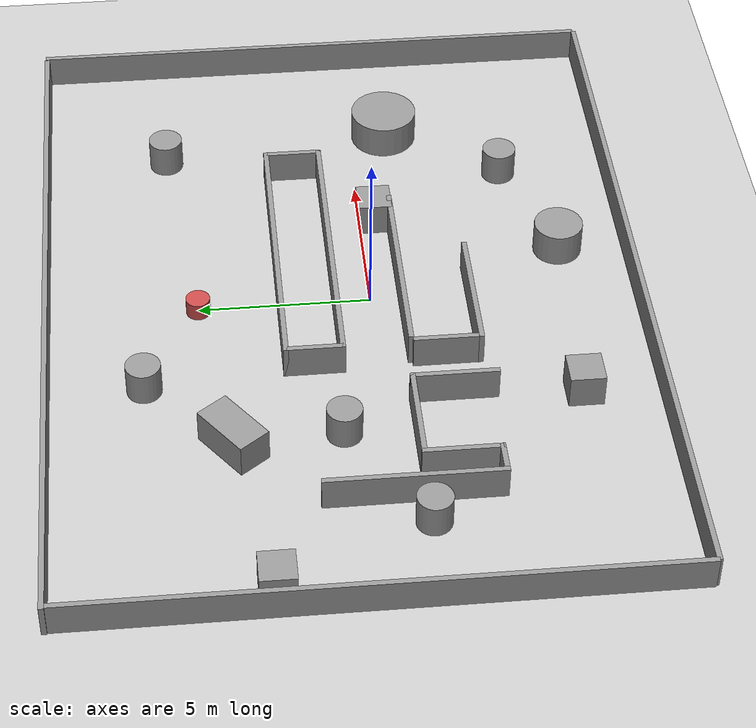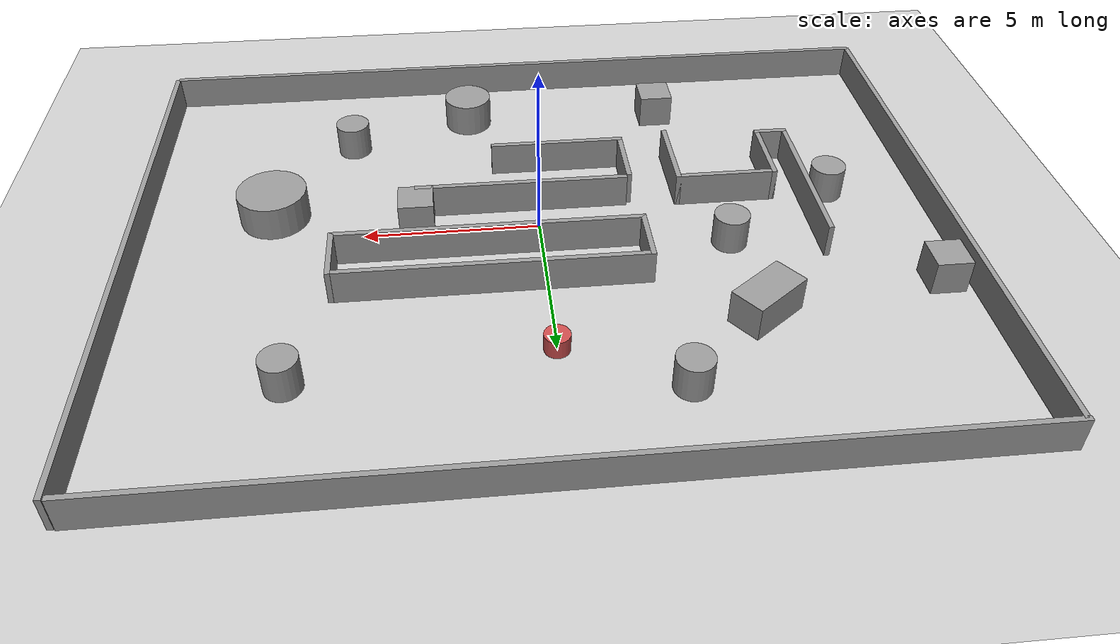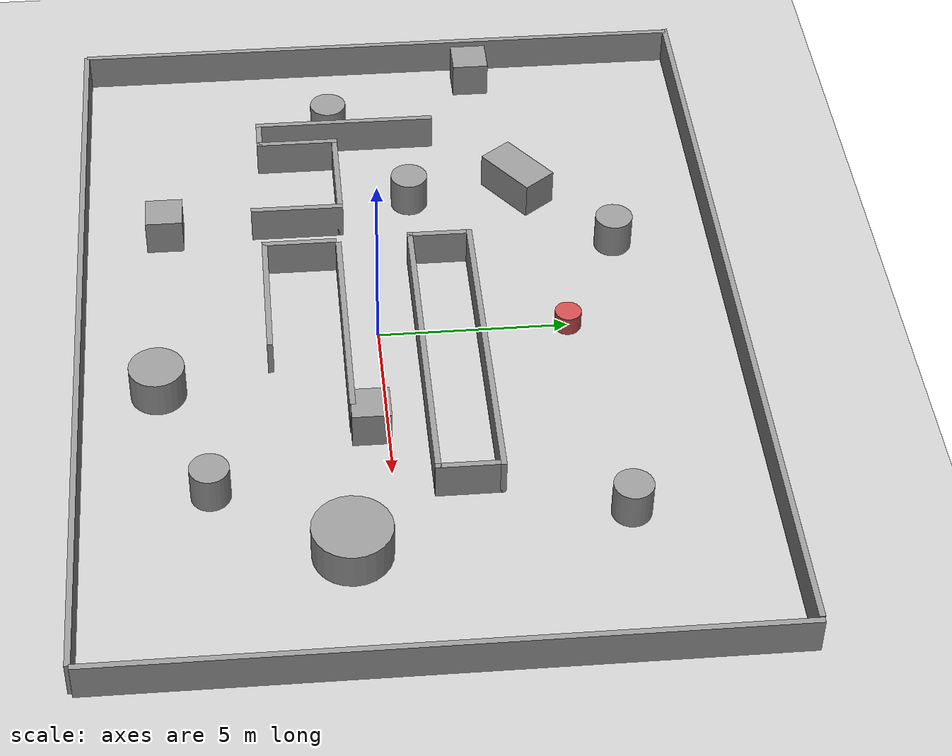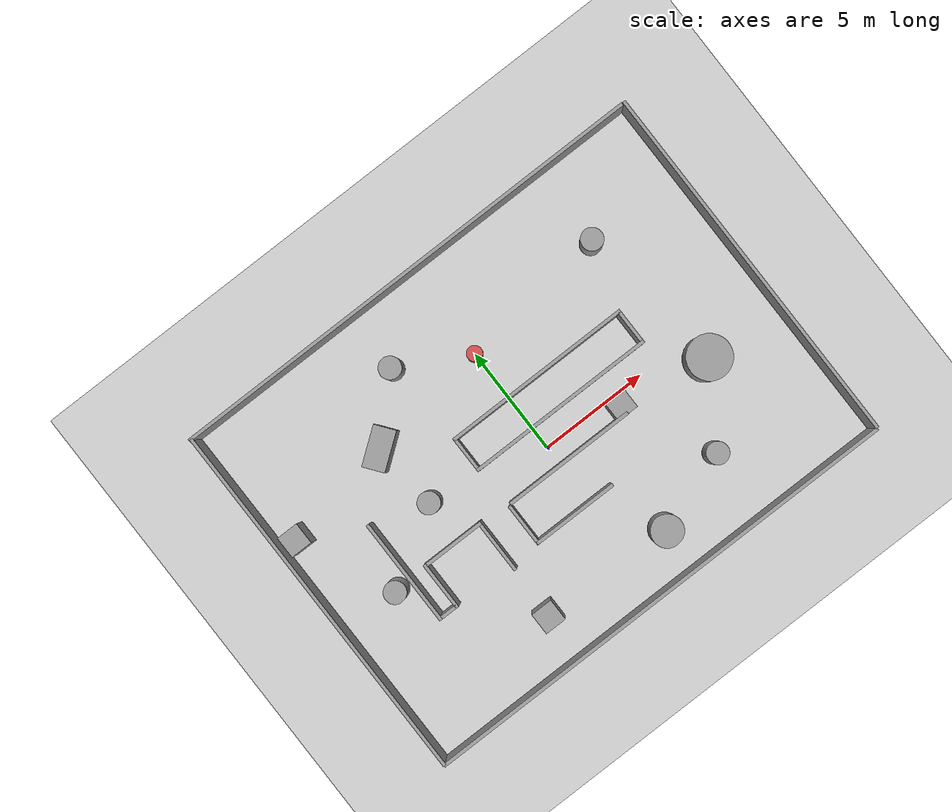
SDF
<sdf version="1.7">
 <world name="default">
  <include><uri>model://VerticalMotion</uri></include>
  <light name="sun" type="directional">
   <pose>0 0 10 0 -0 0</pose>
   <diffuse>0.8 0.8 0.8 1</diffuse>
   <specular>0.2 0.2 0.2 1</specular>
   <attenuation>
    <range>1000</range>
    <constant>0.9</constant>
    <linear>0.01</linear>
    <quadratic>0.001</quadratic>
   </attenuation>
   <direction>-0.5 0.1 -0.9</direction>
   <spot><inner_angle>0</inner_angle><outer_angle>0</outer_angle><falloff>0</falloff></spot>
  </light>
  <model name="ground_plane">
   <static>1</static>
   <link name="link">
    <collision name="collision">
     <geometry><plane><normal>0 0 1</normal><size>100 100</size></plane></geometry>
     <surface><friction><ode><mu>100</mu><mu2>50</mu2></ode></friction></surface>
    </collision>
    <visual name="visual">
     <cast_shadows>0</cast_shadows>
     <geometry><plane><normal>0 0 1</normal><size>100 100</size></plane></geometry>
     <material>
      <script><uri>file://media/materials/scripts/gazebo.material</uri><name>Gazebo/Grey</name></script>
     </material>
    </visual>
   </link>
  </model>
  <gravity>0 0 -9.8</gravity>
  <magnetic_field>6e-06 2.3e-05 -4.2e-05</magnetic_field>
  <atmosphere type="adiabatic">
   <temperature>303.15</temperature>
   <pressure>101325</pressure>
   <humidity>0.6</humidity>
  </atmosphere>
  <physics type="ode">
   <max_step_size>0.001</max_step_size>
   <real_time_factor>1</real_time_factor>
   <real_time_update_rate>1000</real_time_update_rate>
  </physics>
  <scene><ambient>0.4 0.4 0.4 1</ambient><background>0.7 0.7 0.7 1</background><shadows>1</shadows></scene>
  <wind><linear_velocity>1.0 0.5 0.0</linear_velocity></wind>
  <spherical_coordinates>
   <surface_model>EARTH_WGS84</surface_model>
   <latitude_deg>0</latitude_deg>
   <longitude_deg>0</longitude_deg>
   <elevation>0</elevation>
   <heading_deg>0</heading_deg>
  </spherical_coordinates>
  <model name="unit_box">
   <pose>-10.6452 3.41752 0.499995 -1e-05 0 -0.000218</pose>
   <link name="link">
    <inertial>
     <mass>1</mass>
     <inertia>
      <ixx>0.166667</ixx>
      <ixy>0</ixy>
      <ixz>0</ixz>
      <iyy>0.166667</iyy>
      <iyz>0</iyz>
      <izz>0.166667</izz>
     </inertia>
    </inertial>
    <collision name="collision"><geometry><box><size>1 1 1</size></box></geometry></collision>
    <visual name="visual">
     <geometry><box><size>1 1 1</size></box></geometry>
     <material>
      <script><name>Gazebo/Grey</name><uri>file://media/materials/scripts/gazebo.material</uri></script>
     </material>
    </visual>
   </link>
  </model>
  <model name="unit_box_0">
   <pose>3.4815 -0.432572 0.499995 0 1e-05 -2e-06</pose>
   <link name="link">
    <inertial>
     <mass>1</mass>
     <inertia>
      <ixx>0.166667</ixx>
      <ixy>0</ixy>
      <ixz>0</ixz>
      <iyy>0.166667</iyy>
      <iyz>0</iyz>
      <izz>0.166667</izz>
     </inertia>
    </inertial>
    <collision name="collision"><geometry><box><size>1 1 1</size></box></geometry></collision>
    <visual name="visual">
     <geometry><box><size>1 1 1</size></box></geometry>
     <material>
      <script><name>Gazebo/Grey</name><uri>file://media/materials/scripts/gazebo.material</uri></script>
     </material>
    </visual>
   </link>
  </model>
  <model name="unit_box_1">
   <pose>-4.27647 -5.54606 0.499995 -1e-05 0 -0.000225</pose>
   <link name="link">
    <inertial>
     <mass>1</mass>
     <inertia>
      <ixx>0.166667</ixx>
      <ixy>0</ixy>
      <ixz>0</ixz>
      <iyy>0.166667</iyy>
      <iyz>0</iyz>
      <izz>0.166667</izz>
     </inertia>
    </inertial>
    <collision name="collision"><geometry><box><size>1 1 1</size></box></geometry></collision>
    <visual name="visual">
     <geometry><box><size>1 1 1</size></box></geometry>
     <material>
      <script><name>Gazebo/Grey</name><uri>file://media/materials/scripts/gazebo.material</uri></script>
     </material>
    </visual>
   </link>
  </model>
  <model name="unit_cylinder">
   <pose>-8.67512 -0.839217 0.499993 -3e-06 2e-06 -2e-06</pose>
   <link name="link">
    <inertial>
     <mass>1</mass>
     <inertia><ixx>0.145833</ixx><ixy>0</ixy><ixz>0</ixz><iyy>0.145833</iyy><iyz>0</iyz><izz>0.125</izz></inertia>
    </inertial>
    <collision name="collision">
     <geometry><cylinder><radius>0.5</radius><length>1</length></cylinder></geometry>
    </collision>
    <visual name="visual">
     <geometry><cylinder><radius>0.5</radius><length>1</length></cylinder></geometry>
     <material>
      <script><name>Gazebo/Grey</name><uri>file://media/materials/scripts/gazebo.material</uri></script>
     </material>
    </visual>
   </link>
  </model>
  <model name="unit_cylinder_0">
   <pose>-3.13097 6.6323 0.499992 -3e-06 -4e-06 -1e-06</pose>
   <link name="link">
    <inertial>
     <mass>1</mass>
     <inertia><ixx>0.145833</ixx><ixy>0</ixy><ixz>0</ixz><iyy>0.145833</iyy><iyz>0</iyz><izz>0.125</izz></inertia>
    </inertial>
    <collision name="collision">
     <geometry><cylinder><radius>0.5</radius><length>1</length></cylinder></geometry>
    </collision>
    <visual name="visual">
     <geometry><cylinder><radius>0.5</radius><length>1</length></cylinder></geometry>
     <material>
      <script><name>Gazebo/Grey</name><uri>file://media/materials/scripts/gazebo.material</uri></script>
     </material>
    </visual>
   </link>
  </model>
  <model name="unit_cylinder_1">
   <pose>5.42373 -4.48861 0.499992 -3e-06 2e-06 0</pose>
   <link name="link">
    <inertial>
     <mass>1</mass>
     <inertia><ixx>0.145833</ixx><ixy>0</ixy><ixz>0</ixz><iyy>0.145833</iyy><iyz>0</iyz><izz>0.125</izz></inertia>
    </inertial>
    <collision name="collision">
     <geometry><cylinder><radius>0.5</radius><length>1</length></cylinder></geometry>
    </collision>
    <visual name="visual">
     <geometry><cylinder><radius>0.5</radius><length>1</length></cylinder></geometry>
     <material>
      <script><name>Gazebo/Grey</name><uri>file://media/materials/scripts/gazebo.material</uri></script>
     </material>
    </visual>
   </link>
  </model>
  <audio><device>default</device></audio>
  <model name="unit_cylinder_0_clone">
   <pose>-5.29339 1.22652 0.499993 -0 -0 -1e-06</pose>
   <link name="link">
    <inertial>
     <mass>1</mass>
     <inertia><ixx>0.145833</ixx><ixy>0</ixy><ixz>0</ixz><iyy>0.145833</iyy><iyz>0</iyz><izz>0.125</izz></inertia>
    </inertial>
    <collision name="collision">
     <geometry><cylinder><radius>0.5</radius><length>1</length></cylinder></geometry>
    </collision>
    <visual name="visual">
     <geometry><cylinder><radius>0.5</radius><length>1</length></cylinder></geometry>
     <material>
      <script><name>Gazebo/Grey</name><uri>file://media/materials/scripts/gazebo.material</uri></script>
     </material>
    </visual>
   </link>
  </model>
  <model name="building1">
   <link name="Wall_0">
    <pose>0.188 -2.6335 0 0 -0 0</pose>
    <visual name="Wall_0_Visual">
     <pose>0 0 0.5 0 -0 0</pose>
     <geometry><box><size>4 0.15 1</size></box></geometry>
     <material>
      <script><uri>file://media/materials/scripts/gazebo.material</uri><name>Gazebo/Grey</name></script>
      <ambient>1 1 1 1</ambient>
      <shader type="pixel"/>
     </material>
     <meta><layer>0</layer></meta>
    </visual>
    <collision name="Wall_0_Collision">
     <pose>0 0 0.5 0 -0 0</pose>
     <geometry><box><size>4 0.15 1</size></box></geometry>
     <surface>
      <friction>
       <ode><mu>1</mu><mu2>1</mu2><fdir1>0 0 0</fdir1><slip1>0</slip1><slip2>0</slip2></ode>
       <torsional>
        <coefficient>1</coefficient>
        <patch_radius>0</patch_radius>
        <surface_radius>0</surface_radius>
        <use_patch_radius>1</use_patch_radius>
        <ode><slip>0</slip></ode>
       </torsional>
      </friction>
      <bounce><restitution_coefficient>0</restitution_coefficient><threshold>1e+06</threshold></bounce>
      <contact>
       <collide_without_contact>0</collide_without_contact>
       <collide_without_contact_bitmask>1</collide_without_contact_bitmask>
       <collide_bitmask>1</collide_bitmask>
       <ode>
        <soft_cfm>0</soft_cfm>
        <soft_erp>0.2</soft_erp>
        <kp>1e+13</kp>
        <kd>1</kd>
        <max_vel>0.01</max_vel>
        <min_depth>0</min_depth>
       </ode>
       <bullet>
        <split_impulse>1</split_impulse>
        <split_impulse_penetration_threshold>-0.01</split_impulse_penetration_threshold>
        <soft_cfm>0</soft_cfm>
        <soft_erp>0.2</soft_erp>
        <kp>1e+13</kp>
        <kd>1</kd>
       </bullet>
      </contact>
     </surface>
    </collision>
   </link>
   <link name="Wall_10">
    <pose>-6.863 -0.2005 0 0 0 -1.5708</pose>
    <visual name="Wall_10_Visual">
     <pose>0 0 0.5 0 -0 0</pose>
     <geometry><box><size>5 0.15 1</size></box></geometry>
     <material>
      <script><uri>file://media/materials/scripts/gazebo.material</uri><name>Gazebo/Grey</name></script>
      <ambient>1 1 1 1</ambient>
      <shader type="pixel"/>
     </material>
     <meta><layer>0</layer></meta>
    </visual>
    <collision name="Wall_10_Collision">
     <pose>0 0 0.5 0 -0 0</pose>
     <geometry><box><size>5 0.15 1</size></box></geometry>
     <surface>
      <friction>
       <ode><mu>1</mu><mu2>1</mu2><fdir1>0 0 0</fdir1><slip1>0</slip1><slip2>0</slip2></ode>
       <torsional>
        <coefficient>1</coefficient>
        <patch_radius>0</patch_radius>
        <surface_radius>0</surface_radius>
        <use_patch_radius>1</use_patch_radius>
        <ode><slip>0</slip></ode>
       </torsional>
      </friction>
      <bounce><restitution_coefficient>0</restitution_coefficient><threshold>1e+06</threshold></bounce>
      <contact>
       <collide_without_contact>0</collide_without_contact>
       <collide_without_contact_bitmask>1</collide_without_contact_bitmask>
       <collide_bitmask>1</collide_bitmask>
       <ode>
        <soft_cfm>0</soft_cfm>
        <soft_erp>0.2</soft_erp>
        <kp>1e+13</kp>
        <kd>1</kd>
        <max_vel>0.01</max_vel>
        <min_depth>0</min_depth>
       </ode>
       <bullet>
        <split_impulse>1</split_impulse>
        <split_impulse_penetration_threshold>-0.01</split_impulse_penetration_threshold>
        <soft_cfm>0</soft_cfm>
        <soft_erp>0.2</soft_erp>
        <kp>1e+13</kp>
        <kd>1</kd>
       </bullet>
      </contact>
     </surface>
    </collision>
   </link>
   <link name="Wall_11">
    <pose>-6.438 -2.6255 0 0 -0 0</pose>
    <visual name="Wall_11_Visual">
     <pose>0 0 0.5 0 -0 0</pose>
     <geometry><box><size>1 0.15 1</size></box></geometry>
     <material>
      <script><uri>file://media/materials/scripts/gazebo.material</uri><name>Gazebo/Grey</name></script>
      <ambient>1 1 1 1</ambient>
      <shader type="pixel"/>
     </material>
     <meta><layer>0</layer></meta>
    </visual>
    <collision name="Wall_11_Collision">
     <pose>0 0 0.5 0 -0 0</pose>
     <geometry><box><size>1 0.15 1</size></box></geometry>
     <surface>
      <friction>
       <ode><mu>1</mu><mu2>1</mu2><fdir1>0 0 0</fdir1><slip1>0</slip1><slip2>0</slip2></ode>
       <torsional>
        <coefficient>1</coefficient>
        <patch_radius>0</patch_radius>
        <surface_radius>0</surface_radius>
        <use_patch_radius>1</use_patch_radius>
        <ode><slip>0</slip></ode>
       </torsional>
      </friction>
      <bounce><restitution_coefficient>0</restitution_coefficient><threshold>1e+06</threshold></bounce>
      <contact>
       <collide_without_contact>0</collide_without_contact>
       <collide_without_contact_bitmask>1</collide_without_contact_bitmask>
       <collide_bitmask>1</collide_bitmask>
       <ode>
        <soft_cfm>0</soft_cfm>
        <soft_erp>0.2</soft_erp>
        <kp>1e+13</kp>
        <kd>1</kd>
        <max_vel>0.01</max_vel>
        <min_depth>0</min_depth>
       </ode>
       <bullet>
        <split_impulse>1</split_impulse>
        <split_impulse_penetration_threshold>-0.01</split_impulse_penetration_threshold>
        <soft_cfm>0</soft_cfm>
        <soft_erp>0.2</soft_erp>
        <kp>1e+13</kp>
        <kd>1</kd>
       </bullet>
      </contact>
     </surface>
    </collision>
   </link>
   <link name="Wall_12">
    <pose>-6.013 -1.5755 0 0 -0 1.5708</pose>
    <visual name="Wall_12_Visual">
     <pose>0 0 0.5 0 -0 0</pose>
     <geometry><box><size>2.25 0.15 1</size></box></geometry>
     <material>
      <script><uri>file://media/materials/scripts/gazebo.material</uri><name>Gazebo/Grey</name></script>
      <ambient>1 1 1 1</ambient>
      <shader type="pixel"/>
     </material>
     <meta><layer>0</layer></meta>
    </visual>
    <collision name="Wall_12_Collision">
     <pose>0 0 0.5 0 -0 0</pose>
     <geometry><box><size>2.25 0.15 1</size></box></geometry>
     <surface>
      <friction>
       <ode><mu>1</mu><mu2>1</mu2><fdir1>0 0 0</fdir1><slip1>0</slip1><slip2>0</slip2></ode>
       <torsional>
        <coefficient>1</coefficient>
        <patch_radius>0</patch_radius>
        <surface_radius>0</surface_radius>
        <use_patch_radius>1</use_patch_radius>
        <ode><slip>0</slip></ode>
       </torsional>
      </friction>
      <bounce><restitution_coefficient>0</restitution_coefficient><threshold>1e+06</threshold></bounce>
      <contact>
       <collide_without_contact>0</collide_without_contact>
       <collide_without_contact_bitmask>1</collide_without_contact_bitmask>
       <collide_bitmask>1</collide_bitmask>
       <ode>
        <soft_cfm>0</soft_cfm>
        <soft_erp>0.2</soft_erp>
        <kp>1e+13</kp>
        <kd>1</kd>
        <max_vel>0.01</max_vel>
        <min_depth>0</min_depth>
       </ode>
       <bullet>
        <split_impulse>1</split_impulse>
        <split_impulse_penetration_threshold>-0.01</split_impulse_penetration_threshold>
        <soft_cfm>0</soft_cfm>
        <soft_erp>0.2</soft_erp>
        <kp>1e+13</kp>
        <kd>1</kd>
       </bullet>
      </contact>
     </surface>
    </collision>
   </link>
   <link name="Wall_13">
    <pose>-4.588 -0.5255 0 0 -0 0</pose>
    <visual name="Wall_13_Visual">
     <pose>0 0 0.5 0 -0 0</pose>
     <geometry><box><size>3 0.15 1</size></box></geometry>
     <material>
      <script><uri>file://media/materials/scripts/gazebo.material</uri><name>Gazebo/Grey</name></script>
      <ambient>1 1 1 1</ambient>
      <shader type="pixel"/>
     </material>
     <meta><layer>0</layer></meta>
    </visual>
    <collision name="Wall_13_Collision">
     <pose>0 0 0.5 0 -0 0</pose>
     <geometry><box><size>3 0.15 1</size></box></geometry>
     <surface>
      <friction>
       <ode><mu>1</mu><mu2>1</mu2><fdir1>0 0 0</fdir1><slip1>0</slip1><slip2>0</slip2></ode>
       <torsional>
        <coefficient>1</coefficient>
        <patch_radius>0</patch_radius>
        <surface_radius>0</surface_radius>
        <use_patch_radius>1</use_patch_radius>
        <ode><slip>0</slip></ode>
       </torsional>
      </friction>
      <bounce><restitution_coefficient>0</restitution_coefficient><threshold>1e+06</threshold></bounce>
      <contact>
       <collide_without_contact>0</collide_without_contact>
       <collide_without_contact_bitmask>1</collide_without_contact_bitmask>
       <collide_bitmask>1</collide_bitmask>
       <ode>
        <soft_cfm>0</soft_cfm>
        <soft_erp>0.2</soft_erp>
        <kp>1e+13</kp>
        <kd>1</kd>
        <max_vel>0.01</max_vel>
        <min_depth>0</min_depth>
       </ode>
       <bullet>
        <split_impulse>1</split_impulse>
        <split_impulse_penetration_threshold>-0.01</split_impulse_penetration_threshold>
        <soft_cfm>0</soft_cfm>
        <soft_erp>0.2</soft_erp>
        <kp>1e+13</kp>
        <kd>1</kd>
       </bullet>
      </contact>
     </surface>
    </collision>
   </link>
   <link name="Wall_14">
    <pose>-3.163 -1.7005 0 0 0 -1.5708</pose>
    <visual name="Wall_14_Visual">
     <pose>0 0 0.5 0 -0 0</pose>
     <geometry><box><size>2.5 0.15 1</size></box></geometry>
     <material>
      <script><uri>file://media/materials/scripts/gazebo.material</uri><name>Gazebo/Grey</name></script>
      <ambient>1 1 1 1</ambient>
      <shader type="pixel"/>
     </material>
     <meta><layer>0</layer></meta>
    </visual>
    <collision name="Wall_14_Collision">
     <pose>0 0 0.5 0 -0 0</pose>
     <geometry><box><size>2.5 0.15 1</size></box></geometry>
     <surface>
      <friction>
       <ode><mu>1</mu><mu2>1</mu2><fdir1>0 0 0</fdir1><slip1>0</slip1><slip2>0</slip2></ode>
       <torsional>
        <coefficient>1</coefficient>
        <patch_radius>0</patch_radius>
        <surface_radius>0</surface_radius>
        <use_patch_radius>1</use_patch_radius>
        <ode><slip>0</slip></ode>
       </torsional>
      </friction>
      <bounce><restitution_coefficient>0</restitution_coefficient><threshold>1e+06</threshold></bounce>
      <contact>
       <collide_without_contact>0</collide_without_contact>
       <collide_without_contact_bitmask>1</collide_without_contact_bitmask>
       <collide_bitmask>1</collide_bitmask>
       <ode>
        <soft_cfm>0</soft_cfm>
        <soft_erp>0.2</soft_erp>
        <kp>1e+13</kp>
        <kd>1</kd>
        <max_vel>0.01</max_vel>
        <min_depth>0</min_depth>
       </ode>
       <bullet>
        <split_impulse>1</split_impulse>
        <split_impulse_penetration_threshold>-0.01</split_impulse_penetration_threshold>
        <soft_cfm>0</soft_cfm>
        <soft_erp>0.2</soft_erp>
        <kp>1e+13</kp>
        <kd>1</kd>
       </bullet>
      </contact>
     </surface>
    </collision>
   </link>
   <link name="Wall_2">
    <pose>-1.737 -1.7085 0 0 -0 1.5708</pose>
    <visual name="Wall_2_Visual">
     <pose>0 0 0.5 0 -0 0</pose>
     <geometry><box><size>2 0.15 1</size></box></geometry>
     <material>
      <script><uri>file://media/materials/scripts/gazebo.material</uri><name>Gazebo/Grey</name></script>
      <ambient>1 1 1 1</ambient>
      <shader type="pixel"/>
     </material>
     <meta><layer>0</layer></meta>
    </visual>
    <collision name="Wall_2_Collision">
     <pose>0 0 0.5 0 -0 0</pose>
     <geometry><box><size>2 0.15 1</size></box></geometry>
     <surface>
      <friction>
       <ode><mu>1</mu><mu2>1</mu2><fdir1>0 0 0</fdir1><slip1>0</slip1><slip2>0</slip2></ode>
       <torsional>
        <coefficient>1</coefficient>
        <patch_radius>0</patch_radius>
        <surface_radius>0</surface_radius>
        <use_patch_radius>1</use_patch_radius>
        <ode><slip>0</slip></ode>
       </torsional>
      </friction>
      <bounce><restitution_coefficient>0</restitution_coefficient><threshold>1e+06</threshold></bounce>
      <contact>
       <collide_without_contact>0</collide_without_contact>
       <collide_without_contact_bitmask>1</collide_without_contact_bitmask>
       <collide_bitmask>1</collide_bitmask>
       <ode>
        <soft_cfm>0</soft_cfm>
        <soft_erp>0.2</soft_erp>
        <kp>1e+13</kp>
        <kd>1</kd>
        <max_vel>0.01</max_vel>
        <min_depth>0</min_depth>
       </ode>
       <bullet>
        <split_impulse>1</split_impulse>
        <split_impulse_penetration_threshold>-0.01</split_impulse_penetration_threshold>
        <soft_cfm>0</soft_cfm>
        <soft_erp>0.2</soft_erp>
        <kp>1e+13</kp>
        <kd>1</kd>
       </bullet>
      </contact>
     </surface>
    </collision>
   </link>
   <link name="Wall_3">
    <pose>1.41966 -0.65738 0 0 -0 0</pose>
    <inertial>
     <inertia><ixx>0</ixx><ixy>0</ixy><ixz>0</ixz><iyy>0</iyy><iyz>0</iyz><izz>0</izz></inertia>
     <mass>0</mass>
    </inertial>
    <visual name="Wall_3_Visual">
     <pose>0 0 0.5 0 -0 0</pose>
     <geometry><box><size>6.16349 0.15 1</size></box></geometry>
     <material>
      <script><uri>file://media/materials/scripts/gazebo.material</uri><name>Gazebo/Grey</name></script>
      <ambient>1 1 1 1</ambient>
      <shader type="pixel"/>
     </material>
     <meta><layer>0</layer></meta>
    </visual>
    <collision name="Wall_3_Collision">
     <pose>0 0 0.5 0 -0 0</pose>
     <geometry><box><size>6.16349 0.15 1</size></box></geometry>
     <surface>
      <friction>
       <ode><mu>1</mu><mu2>1</mu2><fdir1>0 0 0</fdir1><slip1>0</slip1><slip2>0</slip2></ode>
       <torsional>
        <coefficient>1</coefficient>
        <patch_radius>0</patch_radius>
        <surface_radius>0</surface_radius>
        <use_patch_radius>1</use_patch_radius>
        <ode><slip>0</slip></ode>
       </torsional>
      </friction>
      <bounce><restitution_coefficient>0</restitution_coefficient><threshold>1e+06</threshold></bounce>
      <contact>
       <collide_without_contact>0</collide_without_contact>
       <collide_without_contact_bitmask>1</collide_without_contact_bitmask>
       <collide_bitmask>1</collide_bitmask>
       <ode>
        <soft_cfm>0</soft_cfm>
        <soft_erp>0.2</soft_erp>
        <kp>1e+13</kp>
        <kd>1</kd>
        <max_vel>0.01</max_vel>
        <min_depth>0</min_depth>
       </ode>
       <bullet>
        <split_impulse>1</split_impulse>
        <split_impulse_penetration_threshold>-0.01</split_impulse_penetration_threshold>
        <soft_cfm>0</soft_cfm>
        <soft_erp>0.2</soft_erp>
        <kp>1e+13</kp>
        <kd>1</kd>
       </bullet>
      </contact>
     </surface>
    </collision>
   </link>
   <link name="Wall_5">
    <pose>2.479 1.2755 0 0 -0 0</pose>
    <visual name="Wall_5_Visual">
     <pose>0 0 0.5 0 -0 0</pose>
     <geometry><box><size>8.75 0.15 1</size></box></geometry>
     <material>
      <script><uri>file://media/materials/scripts/gazebo.material</uri><name>Gazebo/Grey</name></script>
      <ambient>1 1 1 1</ambient>
      <shader type="pixel"/>
     </material>
     <meta><layer>0</layer></meta>
    </visual>
    <collision name="Wall_5_Collision">
     <pose>0 0 0.5 0 -0 0</pose>
     <geometry><box><size>8.75 0.15 1</size></box></geometry>
     <surface>
      <friction>
       <ode><mu>1</mu><mu2>1</mu2><fdir1>0 0 0</fdir1><slip1>0</slip1><slip2>0</slip2></ode>
       <torsional>
        <coefficient>1</coefficient>
        <patch_radius>0</patch_radius>
        <surface_radius>0</surface_radius>
        <use_patch_radius>1</use_patch_radius>
        <ode><slip>0</slip></ode>
       </torsional>
      </friction>
      <bounce><restitution_coefficient>0</restitution_coefficient><threshold>1e+06</threshold></bounce>
      <contact>
       <collide_without_contact>0</collide_without_contact>
       <collide_without_contact_bitmask>1</collide_without_contact_bitmask>
       <collide_bitmask>1</collide_bitmask>
       <ode>
        <soft_cfm>0</soft_cfm>
        <soft_erp>0.2</soft_erp>
        <kp>1e+13</kp>
        <kd>1</kd>
        <max_vel>0.01</max_vel>
        <min_depth>0</min_depth>
       </ode>
       <bullet>
        <split_impulse>1</split_impulse>
        <split_impulse_penetration_threshold>-0.01</split_impulse_penetration_threshold>
        <soft_cfm>0</soft_cfm>
        <soft_erp>0.2</soft_erp>
        <kp>1e+13</kp>
        <kd>1</kd>
       </bullet>
      </contact>
     </surface>
    </collision>
   </link>
   <link name="Wall_6">
    <pose>6.779 2.0755 0 0 -0 1.5708</pose>
    <visual name="Wall_6_Visual">
     <pose>0 0 0.5 0 -0 0</pose>
     <geometry><box><size>1.75 0.15 1</size></box></geometry>
     <material>
      <script><uri>file://media/materials/scripts/gazebo.material</uri><name>Gazebo/Grey</name></script>
      <ambient>1 1 1 1</ambient>
      <shader type="pixel"/>
     </material>
     <meta><layer>0</layer></meta>
    </visual>
    <collision name="Wall_6_Collision">
     <pose>0 0 0.5 0 -0 0</pose>
     <geometry><box><size>1.75 0.15 1</size></box></geometry>
     <surface>
      <friction>
       <ode><mu>1</mu><mu2>1</mu2><fdir1>0 0 0</fdir1><slip1>0</slip1><slip2>0</slip2></ode>
       <torsional>
        <coefficient>1</coefficient>
        <patch_radius>0</patch_radius>
        <surface_radius>0</surface_radius>
        <use_patch_radius>1</use_patch_radius>
        <ode><slip>0</slip></ode>
       </torsional>
      </friction>
      <bounce><restitution_coefficient>0</restitution_coefficient><threshold>1e+06</threshold></bounce>
      <contact>
       <collide_without_contact>0</collide_without_contact>
       <collide_without_contact_bitmask>1</collide_without_contact_bitmask>
       <collide_bitmask>1</collide_bitmask>
       <ode>
        <soft_cfm>0</soft_cfm>
        <soft_erp>0.2</soft_erp>
        <kp>1e+13</kp>
        <kd>1</kd>
        <max_vel>0.01</max_vel>
        <min_depth>0</min_depth>
       </ode>
       <bullet>
        <split_impulse>1</split_impulse>
        <split_impulse_penetration_threshold>-0.01</split_impulse_penetration_threshold>
        <soft_cfm>0</soft_cfm>
        <soft_erp>0.2</soft_erp>
        <kp>1e+13</kp>
        <kd>1</kd>
       </bullet>
      </contact>
     </surface>
    </collision>
   </link>
   <link name="Wall_6_clone">
    <pose>12.2823 1.06209 0 0 -0 1.5708</pose>
    <inertial>
     <inertia><ixx>0</ixx><ixy>0</ixy><ixz>0</ixz><iyy>0</iyy><iyz>0</iyz><izz>0</izz></inertia>
     <mass>0</mass>
    </inertial>
    <visual name="Wall_6_Visual">
     <pose>0 0 0.5 0 -0 0</pose>
     <geometry><box><size>17.1178 0.15 1</size></box></geometry>
     <material>
      <script><uri>file://media/materials/scripts/gazebo.material</uri><name>Gazebo/Grey</name></script>
      <ambient>1 1 1 1</ambient>
      <shader type="pixel"/>
     </material>
     <meta><layer>0</layer></meta>
    </visual>
    <collision name="Wall_6_Collision">
     <pose>0 0 0.5 0 -0 0</pose>
     <geometry><box><size>17.1178 0.15 1</size></box></geometry>
     <surface>
      <friction>
       <ode><mu>1</mu><mu2>1</mu2><fdir1>0 0 0</fdir1><slip1>0</slip1><slip2>0</slip2></ode>
       <torsional>
        <coefficient>1</coefficient>
        <patch_radius>0</patch_radius>
        <surface_radius>0</surface_radius>
        <use_patch_radius>1</use_patch_radius>
        <ode><slip>0</slip></ode>
       </torsional>
      </friction>
      <bounce><restitution_coefficient>0</restitution_coefficient><threshold>1e+06</threshold></bounce>
      <contact>
       <collide_without_contact>0</collide_without_contact>
       <collide_without_contact_bitmask>1</collide_without_contact_bitmask>
       <collide_bitmask>1</collide_bitmask>
       <ode>
        <soft_cfm>0</soft_cfm>
        <soft_erp>0.2</soft_erp>
        <kp>1e+13</kp>
        <kd>1</kd>
        <max_vel>0.01</max_vel>
        <min_depth>0</min_depth>
       </ode>
       <bullet>
        <split_impulse>1</split_impulse>
        <split_impulse_penetration_threshold>-0.01</split_impulse_penetration_threshold>
        <soft_cfm>0</soft_cfm>
        <soft_erp>0.2</soft_erp>
        <kp>1e+13</kp>
        <kd>1</kd>
       </bullet>
      </contact>
     </surface>
    </collision>
   </link>
   <link name="Wall_6_clone_clone">
    <pose>-10.4443 1.02433 0 0 -0 1.5708</pose>
    <inertial>
     <inertia><ixx>0</ixx><ixy>0</ixy><ixz>0</ixz><iyy>0</iyy><iyz>0</iyz><izz>0</izz></inertia>
     <mass>0</mass>
    </inertial>
    <visual name="Wall_6_Visual">
     <pose>0 0 0.5 0 -0 0</pose>
     <geometry><box><size>17.1178 0.15 1</size></box></geometry>
     <material>
      <script><uri>file://media/materials/scripts/gazebo.material</uri><name>Gazebo/Grey</name></script>
      <ambient>1 1 1 1</ambient>
      <shader type="pixel"/>
     </material>
     <meta><layer>0</layer></meta>
    </visual>
    <collision name="Wall_6_Collision">
     <pose>0 0 0.5 0 -0 0</pose>
     <geometry><box><size>17.1178 0.15 1</size></box></geometry>
     <surface>
      <friction>
       <ode><mu>1</mu><mu2>1</mu2><fdir1>0 0 0</fdir1><slip1>0</slip1><slip2>0</slip2></ode>
       <torsional>
        <coefficient>1</coefficient>
        <patch_radius>0</patch_radius>
        <surface_radius>0</surface_radius>
        <use_patch_radius>1</use_patch_radius>
        <ode><slip>0</slip></ode>
       </torsional>
      </friction>
      <bounce><restitution_coefficient>0</restitution_coefficient><threshold>1e+06</threshold></bounce>
      <contact>
       <collide_without_contact>0</collide_without_contact>
       <collide_without_contact_bitmask>1</collide_without_contact_bitmask>
       <collide_bitmask>1</collide_bitmask>
       <ode>
        <soft_cfm>0</soft_cfm>
        <soft_erp>0.2</soft_erp>
        <kp>1e+13</kp>
        <kd>1</kd>
        <max_vel>0.01</max_vel>
        <min_depth>0</min_depth>
       </ode>
       <bullet>
        <split_impulse>1</split_impulse>
        <split_impulse_penetration_threshold>-0.01</split_impulse_penetration_threshold>
        <soft_cfm>0</soft_cfm>
        <soft_erp>0.2</soft_erp>
        <kp>1e+13</kp>
        <kd>1</kd>
       </bullet>
      </contact>
     </surface>
    </collision>
   </link>
   <link name="Wall_7">
    <pose>2.479 2.8755 0 0 -0 3.14159</pose>
    <visual name="Wall_7_Visual">
     <pose>0 0 0.5 0 -0 0</pose>
     <geometry><box><size>8.75 0.15 1</size></box></geometry>
     <material>
      <script><uri>file://media/materials/scripts/gazebo.material</uri><name>Gazebo/Grey</name></script>
      <ambient>1 1 1 1</ambient>
      <shader type="pixel"/>
     </material>
     <meta><layer>0</layer></meta>
    </visual>
    <collision name="Wall_7_Collision">
     <pose>0 0 0.5 0 -0 0</pose>
     <geometry><box><size>8.75 0.15 1</size></box></geometry>
     <surface>
      <friction>
       <ode><mu>1</mu><mu2>1</mu2><fdir1>0 0 0</fdir1><slip1>0</slip1><slip2>0</slip2></ode>
       <torsional>
        <coefficient>1</coefficient>
        <patch_radius>0</patch_radius>
        <surface_radius>0</surface_radius>
        <use_patch_radius>1</use_patch_radius>
        <ode><slip>0</slip></ode>
       </torsional>
      </friction>
      <bounce><restitution_coefficient>0</restitution_coefficient><threshold>1e+06</threshold></bounce>
      <contact>
       <collide_without_contact>0</collide_without_contact>
       <collide_without_contact_bitmask>1</collide_without_contact_bitmask>
       <collide_bitmask>1</collide_bitmask>
       <ode>
        <soft_cfm>0</soft_cfm>
        <soft_erp>0.2</soft_erp>
        <kp>1e+13</kp>
        <kd>1</kd>
        <max_vel>0.01</max_vel>
        <min_depth>0</min_depth>
       </ode>
       <bullet>
        <split_impulse>1</split_impulse>
        <split_impulse_penetration_threshold>-0.01</split_impulse_penetration_threshold>
        <soft_cfm>0</soft_cfm>
        <soft_erp>0.2</soft_erp>
        <kp>1e+13</kp>
        <kd>1</kd>
       </bullet>
      </contact>
     </surface>
    </collision>
   </link>
   <link name="Wall_7_clone">
    <pose>0.814901 9.57474 0 0 -0 3.14159</pose>
    <inertial>
     <inertia><ixx>0</ixx><ixy>0</ixy><ixz>0</ixz><iyy>0</iyy><iyz>0</iyz><izz>0</izz></inertia>
     <mass>0</mass>
    </inertial>
    <visual name="Wall_7_Visual">
     <pose>0 0 0.5 0 -0 0</pose>
     <geometry><box><size>22.7246 0.15 1</size></box></geometry>
     <material>
      <script><uri>file://media/materials/scripts/gazebo.material</uri><name>Gazebo/Grey</name></script>
      <ambient>1 1 1 1</ambient>
      <shader type="pixel"/>
     </material>
     <meta><layer>0</layer></meta>
    </visual>
    <collision name="Wall_7_Collision">
     <pose>0 0 0.5 0 -0 0</pose>
     <geometry><box><size>22.7246 0.15 1</size></box></geometry>
     <surface>
      <friction>
       <ode><mu>1</mu><mu2>1</mu2><fdir1>0 0 0</fdir1><slip1>0</slip1><slip2>0</slip2></ode>
       <torsional>
        <coefficient>1</coefficient>
        <patch_radius>0</patch_radius>
        <surface_radius>0</surface_radius>
        <use_patch_radius>1</use_patch_radius>
        <ode><slip>0</slip></ode>
       </torsional>
      </friction>
      <bounce><restitution_coefficient>0</restitution_coefficient><threshold>1e+06</threshold></bounce>
      <contact>
       <collide_without_contact>0</collide_without_contact>
       <collide_without_contact_bitmask>1</collide_without_contact_bitmask>
       <collide_bitmask>1</collide_bitmask>
       <ode>
        <soft_cfm>0</soft_cfm>
        <soft_erp>0.2</soft_erp>
        <kp>1e+13</kp>
        <kd>1</kd>
        <max_vel>0.01</max_vel>
        <min_depth>0</min_depth>
       </ode>
       <bullet>
        <split_impulse>1</split_impulse>
        <split_impulse_penetration_threshold>-0.01</split_impulse_penetration_threshold>
        <soft_cfm>0</soft_cfm>
        <soft_erp>0.2</soft_erp>
        <kp>1e+13</kp>
        <kd>1</kd>
       </bullet>
      </contact>
     </surface>
    </collision>
   </link>
   <link name="Wall_7_clone_clone">
    <pose>0.891179 -7.53134 0 0 -0 3.14159</pose>
    <inertial>
     <inertia><ixx>0</ixx><ixy>0</ixy><ixz>0</ixz><iyy>0</iyy><iyz>0</iyz><izz>0</izz></inertia>
     <mass>0</mass>
    </inertial>
    <visual name="Wall_7_Visual">
     <pose>0 0 0.5 0 -0 0</pose>
     <geometry><box><size>22.7246 0.15 1</size></box></geometry>
     <material>
      <script><uri>file://media/materials/scripts/gazebo.material</uri><name>Gazebo/Grey</name></script>
      <ambient>1 1 1 1</ambient>
      <shader type="pixel"/>
     </material>
     <meta><layer>0</layer></meta>
    </visual>
    <collision name="Wall_7_Collision">
     <pose>0 0 0.5 0 -0 0</pose>
     <geometry><box><size>22.7246 0.15 1</size></box></geometry>
     <surface>
      <friction>
       <ode><mu>1</mu><mu2>1</mu2><fdir1>0 0 0</fdir1><slip1>0</slip1><slip2>0</slip2></ode>
       <torsional>
        <coefficient>1</coefficient>
        <patch_radius>0</patch_radius>
        <surface_radius>0</surface_radius>
        <use_patch_radius>1</use_patch_radius>
        <ode><slip>0</slip></ode>
       </torsional>
      </friction>
      <bounce><restitution_coefficient>0</restitution_coefficient><threshold>1e+06</threshold></bounce>
      <contact>
       <collide_without_contact>0</collide_without_contact>
       <collide_without_contact_bitmask>1</collide_without_contact_bitmask>
       <collide_bitmask>1</collide_bitmask>
       <ode>
        <soft_cfm>0</soft_cfm>
        <soft_erp>0.2</soft_erp>
        <kp>1e+13</kp>
        <kd>1</kd>
        <max_vel>0.01</max_vel>
        <min_depth>0</min_depth>
       </ode>
       <bullet>
        <split_impulse>1</split_impulse>
        <split_impulse_penetration_threshold>-0.01</split_impulse_penetration_threshold>
        <soft_cfm>0</soft_cfm>
        <soft_erp>0.2</soft_erp>
        <kp>1e+13</kp>
        <kd>1</kd>
       </bullet>
      </contact>
     </surface>
    </collision>
   </link>
   <link name="Wall_8">
    <pose>-1.821 2.0755 0 0 0 -1.5708</pose>
    <visual name="Wall_8_Visual">
     <pose>0 0 0.5 0 -0 0</pose>
     <geometry><box><size>1.75 0.15 1</size></box></geometry>
     <material>
      <script><uri>file://media/materials/scripts/gazebo.material</uri><name>Gazebo/Grey</name></script>
      <ambient>1 1 1 1</ambient>
      <shader type="pixel"/>
     </material>
     <meta><layer>0</layer></meta>
    </visual>
    <collision name="Wall_8_Collision">
     <pose>0 0 0.5 0 -0 0</pose>
     <geometry><box><size>1.75 0.15 1</size></box></geometry>
     <surface>
      <friction>
       <ode><mu>1</mu><mu2>1</mu2><fdir1>0 0 0</fdir1><slip1>0</slip1><slip2>0</slip2></ode>
       <torsional>
        <coefficient>1</coefficient>
        <patch_radius>0</patch_radius>
        <surface_radius>0</surface_radius>
        <use_patch_radius>1</use_patch_radius>
        <ode><slip>0</slip></ode>
       </torsional>
      </friction>
      <bounce><restitution_coefficient>0</restitution_coefficient><threshold>1e+06</threshold></bounce>
      <contact>
       <collide_without_contact>0</collide_without_contact>
       <collide_without_contact_bitmask>1</collide_without_contact_bitmask>
       <collide_bitmask>1</collide_bitmask>
       <ode>
        <soft_cfm>0</soft_cfm>
        <soft_erp>0.2</soft_erp>
        <kp>1e+13</kp>
        <kd>1</kd>
        <max_vel>0.01</max_vel>
        <min_depth>0</min_depth>
       </ode>
       <bullet>
        <split_impulse>1</split_impulse>
        <split_impulse_penetration_threshold>-0.01</split_impulse_penetration_threshold>
        <soft_cfm>0</soft_cfm>
        <soft_erp>0.2</soft_erp>
        <kp>1e+13</kp>
        <kd>1</kd>
       </bullet>
      </contact>
     </surface>
    </collision>
   </link>
   <link name="link_0">
    <inertial>
     <mass>3.97615</mass>
     <inertia><ixx>1.31945</ixx><ixy>0</ixy><ixz>0</ixz><iyy>1.31945</iyy><iyz>0</iyz><izz>1.97622</izz></inertia>
    </inertial>
    <pose>8.58859 -0.920444 0.5 0 -0 0</pose>
    <visual name="visual">
     <geometry><cylinder><radius>0.997013</radius><length>1</length></cylinder></geometry>
     <material>
      <lighting>1</lighting>
      <script><uri>file://media/materials/scripts/gazebo.material</uri><name>Gazebo/Grey</name></script>
      <shader type="pixel"/>
     </material>
    </visual>
    <collision name="collision">
     <geometry><cylinder><radius>0.997013</radius><length>1</length></cylinder></geometry>
     <surface>
      <friction>
       <ode><mu>1</mu><mu2>1</mu2><fdir1>0 0 0</fdir1><slip1>0</slip1><slip2>0</slip2></ode>
       <torsional>
        <coefficient>1</coefficient>
        <patch_radius>0</patch_radius>
        <surface_radius>0</surface_radius>
        <use_patch_radius>1</use_patch_radius>
        <ode><slip>0</slip></ode>
       </torsional>
      </friction>
      <bounce><restitution_coefficient>0</restitution_coefficient><threshold>1e+06</threshold></bounce>
      <contact>
       <collide_without_contact>0</collide_without_contact>
       <collide_without_contact_bitmask>1</collide_without_contact_bitmask>
       <collide_bitmask>1</collide_bitmask>
       <ode>
        <soft_cfm>0</soft_cfm>
        <soft_erp>0.2</soft_erp>
        <kp>1e+13</kp>
        <kd>1</kd>
        <max_vel>0.01</max_vel>
        <min_depth>0</min_depth>
       </ode>
       <bullet>
        <split_impulse>1</split_impulse>
        <split_impulse_penetration_threshold>-0.01</split_impulse_penetration_threshold>
        <soft_cfm>0</soft_cfm>
        <soft_erp>0.2</soft_erp>
        <kp>1e+13</kp>
        <kd>1</kd>
       </bullet>
      </contact>
     </surface>
    </collision>
   </link>
   <link name="link_0_clone">
    <inertial>
     <mass>2.04941</mass>
     <inertia>
      <ixx>0.433288</ixx>
      <ixy>0</ixy>
      <ixz>0</ixz>
      <iyy>0.433288</iyy>
      <iyz>0</iyz>
      <izz>0.525008</izz>
     </inertia>
    </inertial>
    <pose>2.78854 -5.53052 0.5 0 -0 0</pose>
    <visual name="visual">
     <geometry><cylinder><radius>0.715786</radius><length>1</length></cylinder></geometry>
     <material>
      <lighting>1</lighting>
      <script><uri>file://media/materials/scripts/gazebo.material</uri><name>Gazebo/Grey</name></script>
      <shader type="pixel"/>
     </material>
    </visual>
    <collision name="collision">
     <geometry><cylinder><radius>0.715786</radius><length>1</length></cylinder></geometry>
     <surface>
      <friction>
       <ode><mu>1</mu><mu2>1</mu2><fdir1>0 0 0</fdir1><slip1>0</slip1><slip2>0</slip2></ode>
       <torsional>
        <coefficient>1</coefficient>
        <patch_radius>0</patch_radius>
        <surface_radius>0</surface_radius>
        <use_patch_radius>1</use_patch_radius>
        <ode><slip>0</slip></ode>
       </torsional>
      </friction>
      <bounce><restitution_coefficient>0</restitution_coefficient><threshold>1e+06</threshold></bounce>
      <contact>
       <collide_without_contact>0</collide_without_contact>
       <collide_without_contact_bitmask>1</collide_without_contact_bitmask>
       <collide_bitmask>1</collide_bitmask>
       <ode>
        <soft_cfm>0</soft_cfm>
        <soft_erp>0.2</soft_erp>
        <kp>1e+13</kp>
        <kd>1</kd>
        <max_vel>0.01</max_vel>
        <min_depth>0</min_depth>
       </ode>
       <bullet>
        <split_impulse>1</split_impulse>
        <split_impulse_penetration_threshold>-0.01</split_impulse_penetration_threshold>
        <soft_cfm>0</soft_cfm>
        <soft_erp>0.2</soft_erp>
        <kp>1e+13</kp>
        <kd>1</kd>
       </bullet>
      </contact>
     </surface>
    </collision>
   </link>
   <link name="link_0_clone_0">
    <inertial>
     <mass>1.00234</mass>
     <inertia>
      <ixx>0.146322</ixx>
      <ixy>0</ixy>
      <ixz>0</ixz>
      <iyy>0.146322</iyy>
      <iyz>0</iyz>
      <izz>0.125588</izz>
     </inertia>
    </inertial>
    <pose>7.74842 5.92019 0.5 0 -0 0</pose>
    <visual name="visual">
     <geometry><cylinder><radius>0.500588</radius><length>1</length></cylinder></geometry>
     <material>
      <lighting>1</lighting>
      <script><uri>file://media/materials/scripts/gazebo.material</uri><name>Gazebo/Grey</name></script>
      <shader type="pixel"/>
     </material>
    </visual>
    <collision name="collision">
     <geometry><cylinder><radius>0.500588</radius><length>1</length></cylinder></geometry>
     <surface>
      <friction>
       <ode><mu>1</mu><mu2>1</mu2><fdir1>0 0 0</fdir1><slip1>0</slip1><slip2>0</slip2></ode>
       <torsional>
        <coefficient>1</coefficient>
        <patch_radius>0</patch_radius>
        <surface_radius>0</surface_radius>
        <use_patch_radius>1</use_patch_radius>
        <ode><slip>0</slip></ode>
       </torsional>
      </friction>
      <bounce><restitution_coefficient>0</restitution_coefficient><threshold>1e+06</threshold></bounce>
      <contact>
       <collide_without_contact>0</collide_without_contact>
       <collide_without_contact_bitmask>1</collide_without_contact_bitmask>
       <collide_bitmask>1</collide_bitmask>
       <ode>
        <soft_cfm>0</soft_cfm>
        <soft_erp>0.2</soft_erp>
        <kp>1e+13</kp>
        <kd>1</kd>
        <max_vel>0.01</max_vel>
        <min_depth>0</min_depth>
       </ode>
       <bullet>
        <split_impulse>1</split_impulse>
        <split_impulse_penetration_threshold>-0.01</split_impulse_penetration_threshold>
        <soft_cfm>0</soft_cfm>
        <soft_erp>0.2</soft_erp>
        <kp>1e+13</kp>
        <kd>1</kd>
       </bullet>
      </contact>
     </surface>
    </collision>
   </link>
   <link name="link_1">
    <inertial>
     <mass>1.83403</mass>
     <inertia>
      <ixx>0.666924</ixx>
      <ixy>0</ixy>
      <ixz>0</ixz>
      <iyy>0.305671</iyy>
      <iyz>0</iyz>
      <izz>0.666924</izz>
     </inertia>
    </inertial>
    <pose>-4.53893 4.49368 0.5 0 0 -0.927989</pose>
    <visual name="visual">
     <geometry><box><size>1 1.83403 1</size></box></geometry>
     <material>
      <lighting>1</lighting>
      <script><uri>file://media/materials/scripts/gazebo.material</uri><name>Gazebo/Grey</name></script>
      <shader type="pixel"/>
     </material>
    </visual>
    <collision name="collision">
     <geometry><box><size>1 1.83403 1</size></box></geometry>
     <surface>
      <friction>
       <ode><mu>1</mu><mu2>1</mu2><fdir1>0 0 0</fdir1><slip1>0</slip1><slip2>0</slip2></ode>
       <torsional>
        <coefficient>1</coefficient>
        <patch_radius>0</patch_radius>
        <surface_radius>0</surface_radius>
        <use_patch_radius>1</use_patch_radius>
        <ode><slip>0</slip></ode>
       </torsional>
      </friction>
      <bounce><restitution_coefficient>0</restitution_coefficient><threshold>1e+06</threshold></bounce>
      <contact>
       <collide_without_contact>0</collide_without_contact>
       <collide_without_contact_bitmask>1</collide_without_contact_bitmask>
       <collide_bitmask>1</collide_bitmask>
       <ode>
        <soft_cfm>0</soft_cfm>
        <soft_erp>0.2</soft_erp>
        <kp>1e+13</kp>
        <kd>1</kd>
        <max_vel>0.01</max_vel>
        <min_depth>0</min_depth>
       </ode>
       <bullet>
        <split_impulse>1</split_impulse>
        <split_impulse_penetration_threshold>-0.01</split_impulse_penetration_threshold>
        <soft_cfm>0</soft_cfm>
        <soft_erp>0.2</soft_erp>
        <kp>1e+13</kp>
        <kd>1</kd>
       </bullet>
      </contact>
     </surface>
    </collision>
   </link>
   <static>1</static>
   <pose>-1.00043 -0.224073 0 0 -0 0</pose>
  </model>
  <plugin name="velocity_control" filename="/usr/lib/x86_64-linux-gnu/gz-sim-8/plugins/libgz-sim8-velocity-control-system.so"/>
 </world>
</sdf>

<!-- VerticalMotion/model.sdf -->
<sdf version="1.6">
  <model name="VerticalMotion">
    <static>false</static>

    <link name="link">
      <pose>0 5 0 0 0 0</pose>
      <visual name="visual">
        <geometry>
          <cylinder>
            <radius>0.35</radius>
            <length>1.0</length>
          </cylinder>
        </geometry>
        <material>
          <ambient>0.8 0.3 0.3 1</ambient>
          <diffuse>0.8 0.3 0.3 1</diffuse>
          <specular>0.5 0.5 0.5 1</specular>
        </material>
      </visual>
      <collision name="collision">
        <geometry>
          <cylinder>
            <radius>0.35</radius>
            <length>1.0</length>
          </cylinder>
        </geometry>
      </collision>
      <inertial>
        <mass>1.0</mass>
        <inertia>
          <ixx>0.1</ixx>
          <iyy>0.1</iyy>
          <izz>0.1</izz>
        </inertia>
      </inertial>
    </link>

    <!-- Attach the plugin -->
    <plugin name="VerticalMotionSystem" filename="libvertical_motion_system.so">
      <mode>bounce</mode>
      <axis>x</axis>
      <min>-2.0</min>
      <max> 2.0</max>
      <speed>0.6</speed>
    </plugin>
  </model>
</sdf>
